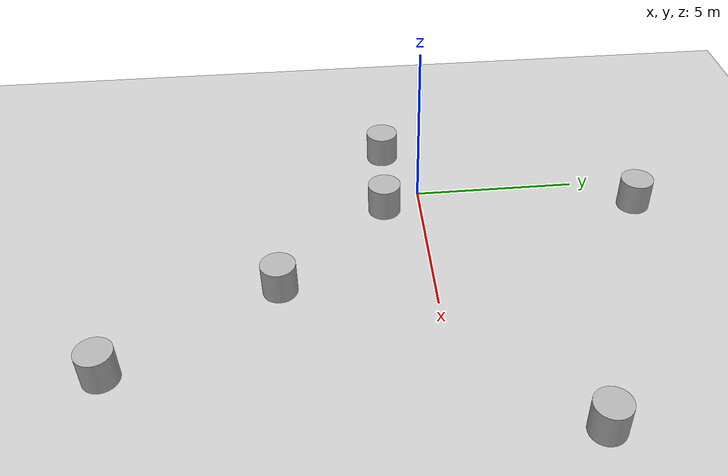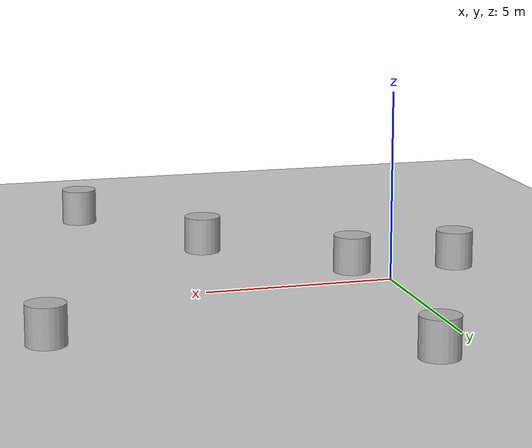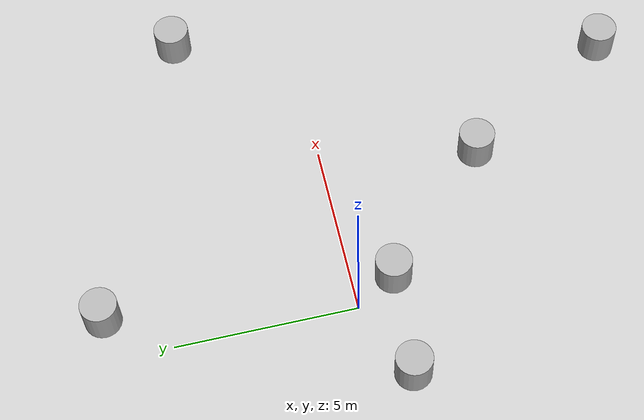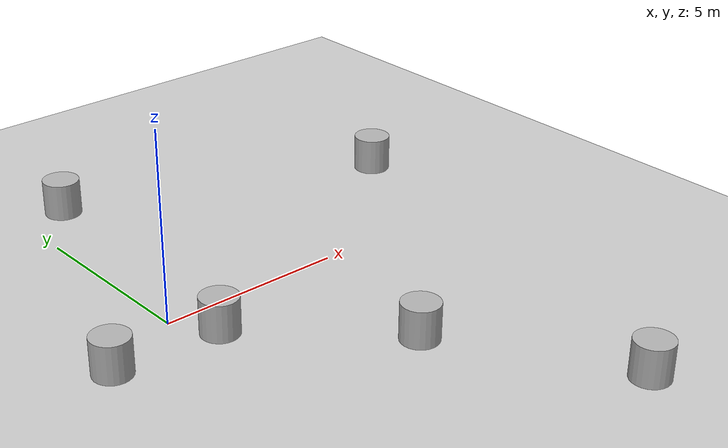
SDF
<sdf version='1.10'>
  <world name='empty'>
    <physics name='1ms' type='ignored'>
      <max_step_size>0.001</max_step_size>
      <real_time_factor>1</real_time_factor>
      <real_time_update_rate>1000</real_time_update_rate>
    </physics>
    <plugin name='gz::sim::systems::Physics' filename='gz-sim-physics-system'/>
    <plugin name='gz::sim::systems::UserCommands' filename='gz-sim-user-commands-system'/>
    <plugin name='gz::sim::systems::SceneBroadcaster' filename='gz-sim-scene-broadcaster-system'/>
    <plugin name='gz::sim::systems::Contact' filename='gz-sim-contact-system'/>
    <gravity>0 0 -9.8000000000000007</gravity>
    <magnetic_field>5.5644999999999998e-06 2.2875799999999999e-05 -4.2388400000000002e-05</magnetic_field>
    <atmosphere type='adiabatic'/>
    <scene>
      <ambient>0.400000006 0.400000006 0.400000006 1</ambient>
      <background>0.699999988 0.699999988 0.699999988 1</background>
      <shadows>true</shadows>
    </scene>
    <model name='ground_plane'>
      <static>true</static>
      <link name='link'>
        <collision name='collision'>
          <geometry>
            <plane>
              <normal>0 0 1</normal>
              <size>100 100</size>
            </plane>
          </geometry>
          <surface>
            <friction>
              <ode/>
            </friction>
            <bounce/>
            <contact/>
          </surface>
        </collision>
        <visual name='visual'>
          <geometry>
            <plane>
              <normal>0 0 1</normal>
              <size>100 100</size>
            </plane>
          </geometry>
          <material>
            <ambient>0.800000012 0.800000012 0.800000012 1</ambient>
            <diffuse>0.800000012 0.800000012 0.800000012 1</diffuse>
            <specular>0.800000012 0.800000012 0.800000012 1</specular>
          </material>
        </visual>
        <pose>0 0 0 0 0 0</pose>
        <inertial>
          <pose>0 0 0 0 0 0</pose>
          <mass>1</mass>
          <inertia>
            <ixx>1</ixx>
            <ixy>0</ixy>
            <ixz>0</ixz>
            <iyy>1</iyy>
            <iyz>0</iyz>
            <izz>1</izz>
          </inertia>
        </inertial>
        <enable_wind>false</enable_wind>
      </link>
      <pose>0 0 0 0 0 0</pose>
      <self_collide>false</self_collide>
    </model>

    <model name='cylinder'>
      <pose>9.6281661945188155 3.3981692627661175 0.49999942638036005 -1.580492737461402e-19 -3.9435186732273845e-19 -5.2847610190876421e-21</pose>
      <link name='cylinder_link'>
        <inertial>
          <inertia>
            <ixx>0.14580000000000001</ixx>
            <ixy>0</ixy>
            <ixz>0</ixz>
            <iyy>0.14580000000000001</iyy>
            <iyz>0</iyz>
            <izz>0.125</izz>
          </inertia>
          <mass>1</mass>
          <pose>0 0 0 0 0 0</pose>
        </inertial>
        <collision name='cylinder_collision'>
          <geometry>
            <cylinder>
              <radius>0.5</radius>
              <length>1</length>
            </cylinder>
          </geometry>
          <surface>
            <friction>
              <ode/>
            </friction>
            <bounce/>
            <contact/>
          </surface>
        </collision>
        <visual name='cylinder_visual'>
          <geometry>
            <cylinder>
              <radius>0.5</radius>
              <length>1</length>
            </cylinder>
          </geometry>
          <material>
            <ambient>0.300000012 0.300000012 0.300000012 1</ambient>
            <diffuse>0.699999988 0.699999988 0.699999988 1</diffuse>
            <specular>1 1 1 1</specular>
          </material>
        </visual>
        <pose>0 0 0 0 0 0</pose>
        <enable_wind>false</enable_wind>
      </link>
      <static>false</static>
      <self_collide>false</self_collide>
    </model>
    <model name='cylinder_0'>
      <pose>6.8070448858956887 -8.8678166488107912 0.49999942638036005 1.3421077884671388e-19 -3.9326647418848432e-19 -2.5159461854668581e-20</pose>
      <link name='cylinder_link'>
        <inertial>
          <inertia>
            <ixx>0.14580000000000001</ixx>
            <ixy>0</ixy>
            <ixz>0</ixz>
            <iyy>0.14580000000000001</iyy>
            <iyz>0</iyz>
            <izz>0.125</izz>
          </inertia>
          <mass>1</mass>
          <pose>0 0 0 0 0 0</pose>
        </inertial>
        <collision name='cylinder_collision'>
          <geometry>
            <cylinder>
              <radius>0.5</radius>
              <length>1</length>
            </cylinder>
          </geometry>
          <surface>
            <friction>
              <ode/>
            </friction>
            <bounce/>
            <contact/>
          </surface>
        </collision>
        <visual name='cylinder_visual'>
          <geometry>
            <cylinder>
              <radius>0.5</radius>
              <length>1</length>
            </cylinder>
          </geometry>
          <material>
            <ambient>0.300000012 0.300000012 0.300000012 1</ambient>
            <diffuse>0.699999988 0.699999988 0.699999988 1</diffuse>
            <specular>1 1 1 1</specular>
          </material>
        </visual>
        <pose>0 0 0 0 0 0</pose>
        <enable_wind>false</enable_wind>
      </link>
      <static>false</static>
      <self_collide>false</self_collide>
    </model>
    <model name='cylinder_1'>
      <pose>0.70602861609425371 -1.1309479160565159 0.49999942638036005 3.4018460656648012e-19 8.5533340978152386e-20 1.7853213328289001e-20</pose>
      <link name='cylinder_link'>
        <inertial>
          <inertia>
            <ixx>0.14580000000000001</ixx>
            <ixy>0</ixy>
            <ixz>0</ixz>
            <iyy>0.14580000000000001</iyy>
            <iyz>0</iyz>
            <izz>0.125</izz>
          </inertia>
          <mass>1</mass>
          <pose>0 0 0 0 0 0</pose>
        </inertial>
        <collision name='cylinder_collision'>
          <geometry>
            <cylinder>
              <radius>0.5</radius>
              <length>1</length>
            </cylinder>
          </geometry>
          <surface>
            <friction>
              <ode/>
            </friction>
            <bounce/>
            <contact/>
          </surface>
        </collision>
        <visual name='cylinder_visual'>
          <geometry>
            <cylinder>
              <radius>0.5</radius>
              <length>1</length>
            </cylinder>
          </geometry>
          <material>
            <ambient>0.300000012 0.300000012 0.300000012 1</ambient>
            <diffuse>0.699999988 0.699999988 0.699999988 1</diffuse>
            <specular>1 1 1 1</specular>
          </material>
        </visual>
        <pose>0 0 0 0 0 0</pose>
        <enable_wind>false</enable_wind>
      </link>
      <static>false</static>
      <self_collide>false</self_collide>
    </model>
    <model name='cylinder_2'>
      <pose>-2.1538243093448779 -0.95765055105310537 0.49999942638036005 1.3787507864022402e-20 4.9298510008561041e-20 4.6547736917294758e-21</pose>
      <link name='cylinder_link'>
        <inertial>
          <inertia>
            <ixx>0.14580000000000001</ixx>
            <ixy>0</ixy>
            <ixz>0</ixz>
            <iyy>0.14580000000000001</iyy>
            <iyz>0</iyz>
            <izz>0.125</izz>
          </inertia>
          <mass>1</mass>
          <pose>0 0 0 0 0 0</pose>
        </inertial>
        <collision name='cylinder_collision'>
          <geometry>
            <cylinder>
              <radius>0.5</radius>
              <length>1</length>
            </cylinder>
          </geometry>
          <surface>
            <friction>
              <ode/>
            </friction>
            <bounce/>
            <contact/>
          </surface>
        </collision>
        <visual name='cylinder_visual'>
          <geometry>
            <cylinder>
              <radius>0.5</radius>
              <length>1</length>
            </cylinder>
          </geometry>
          <material>
            <ambient>0.300000012 0.300000012 0.300000012 1</ambient>
            <diffuse>0.699999988 0.699999988 0.699999988 1</diffuse>
            <specular>1 1 1 1</specular>
          </material>
        </visual>
        <pose>0 0 0 0 0 0</pose>
        <enable_wind>false</enable_wind>
      </link>
      <static>false</static>
      <self_collide>false</self_collide>
    </model>
    <model name='cylinder_3'>
      <pose>1.2158929332919772 6.7043835495318502 0.49999942638036005 5.9120338426486412e-20 -2.7616476873009402e-20 -1.0210448320359191e-20</pose>
      <link name='cylinder_link'>
        <inertial>
          <inertia>
            <ixx>0.14580000000000001</ixx>
            <ixy>0</ixy>
            <ixz>0</ixz>
            <iyy>0.14580000000000001</iyy>
            <iyz>0</iyz>
            <izz>0.125</izz>
          </inertia>
          <mass>1</mass>
          <pose>0 0 0 0 0 0</pose>
        </inertial>
        <collision name='cylinder_collision'>
          <geometry>
            <cylinder>
              <radius>0.5</radius>
              <length>1</length>
            </cylinder>
          </geometry>
          <surface>
            <friction>
              <ode/>
            </friction>
            <bounce/>
            <contact/>
          </surface>
        </collision>
        <visual name='cylinder_visual'>
          <geometry>
            <cylinder>
              <radius>0.5</radius>
              <length>1</length>
            </cylinder>
          </geometry>
          <material>
            <ambient>0.300000012 0.300000012 0.300000012 1</ambient>
            <diffuse>0.699999988 0.699999988 0.699999988 1</diffuse>
            <specular>1 1 1 1</specular>
          </material>
        </visual>
        <pose>0 0 0 0 0 0</pose>
        <enable_wind>false</enable_wind>
      </link>
      <static>false</static>
      <self_collide>false</self_collide>
    </model>
    <model name='cylinder_4'>
      <pose>4.0574784754661319 -4.3708609444288928 0.49999942638036005 5.1341019444857365e-21 -9.2366270954346299e-21 1.4810453332375947e-20</pose>
      <link name='cylinder_link'>
        <inertial>
          <inertia>
            <ixx>0.14580000000000001</ixx>
            <ixy>0</ixy>
            <ixz>0</ixz>
            <iyy>0.14580000000000001</iyy>
            <iyz>0</iyz>
            <izz>0.125</izz>
          </inertia>
          <mass>1</mass>
          <pose>0 0 0 0 0 0</pose>
        </inertial>
        <collision name='cylinder_collision'>
          <geometry>
            <cylinder>
              <radius>0.5</radius>
              <length>1</length>
            </cylinder>
          </geometry>
          <surface>
            <friction>
              <ode/>
            </friction>
            <bounce/>
            <contact/>
          </surface>
        </collision>
        <visual name='cylinder_visual'>
          <geometry>
            <cylinder>
              <radius>0.5</radius>
              <length>1</length>
            </cylinder>
          </geometry>
          <material>
            <ambient>0.300000012 0.300000012 0.300000012 1</ambient>
            <diffuse>0.699999988 0.699999988 0.699999988 1</diffuse>
            <specular>1 1 1 1</specular>
          </material>
        </visual>
        <pose>0 0 0 0 0 0</pose>
        <enable_wind>false</enable_wind>
      </link>
      <static>false</static>
      <self_collide>false</self_collide>
    </model>
    <light name='sun' type='directional'>
      <pose>0 0 10 0 0 0</pose>
      <cast_shadows>true</cast_shadows>
      <intensity>1</intensity>
      <direction>-0.5 0.10000000000000001 -0.90000000000000002</direction>
      <diffuse>0.800000012 0.800000012 0.800000012 1</diffuse>
      <specular>0.200000003 0.200000003 0.200000003 1</specular>
      <attenuation>
        <range>1000</range>
        <linear>0.01</linear>
        <constant>0.90000000000000002</constant>
        <quadratic>0.001</quadratic>
      </attenuation>
      <spot>
        <inner_angle>0</inner_angle>
        <outer_angle>0</outer_angle>
        <falloff>0</falloff>
      </spot>
    </light>
  </world>
</sdf>
